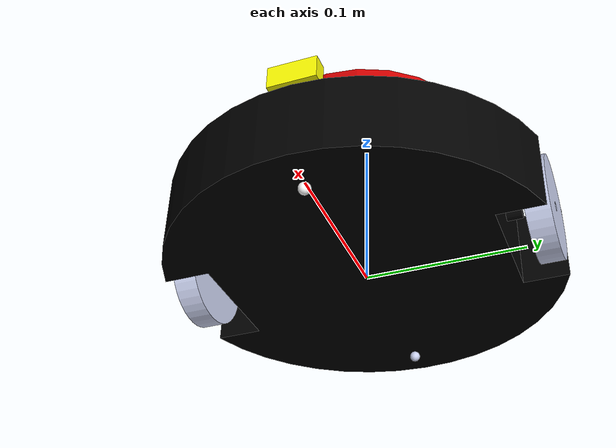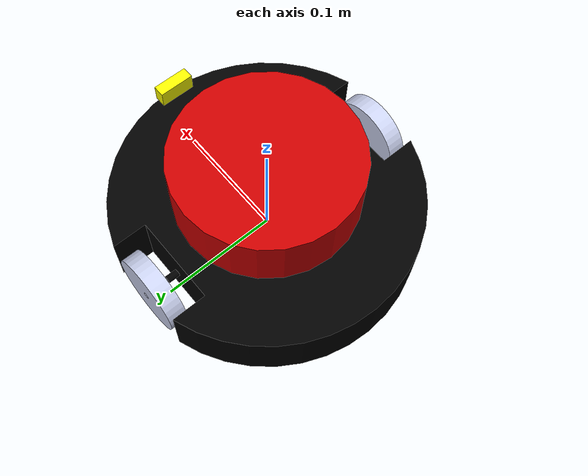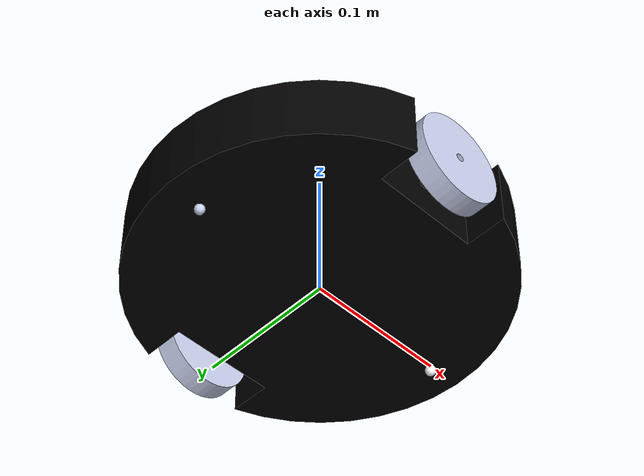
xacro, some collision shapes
<?xml version="1.0"?>
<robot xmlns:xacro="http://www.ros.org/wiki/xacro"  name="hv_bot">

    <xacro:include filename="description_new.urdf" />

    <xacro:include filename="gz.xacro" />
    <xacro:include filename="materials.xacro" />

    <xacro:include filename="lidar.xacro" />
    <xacro:include filename="camera.xacro" />

</robot>

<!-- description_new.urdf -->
<robot name="hv_bot">

  <link name="base_footprint"/>

  <joint name="base_footprint_joint" type="fixed">
    <origin xyz="0 0 0" rpy="0 0 0" />
    <parent link="base_footprint" />
    <child link="base_link" />
  </joint>

<link name="base_link">
    <inertial>
      <origin xyz="0 0 0.0249999818482818" rpy="0 0 0" />
      <mass value="2.20669504552775" />
      <inertia
        ixx="0.00720851555103568" ixy="5.88950083162519E-19" ixz="2.75039385123007E-19"
        iyy="0.00993602524548524" iyz="-3.85986754710237E-20" izz="0.0162253162137275" />
    </inertial>

    <visual>
      <origin xyz="0 0 0" rpy="0 0 0" />
      <geometry>
        <mesh filename="file://$(find description_new)/meshes/base_link.STL" scale="1 1 1"/>
      </geometry>
      <material name="">
        <color rgba="0.0 0.0 0.0 1.0"/>
      </material>
    </visual>

    <collision>
      <origin xyz="0 0 0" rpy="0 0 0" />
      <geometry>
        <mesh filename="file://$(find description_new)/meshes/base_link.STL" scale="1 1 1"/>
      </geometry>
    </collision>
  </link>

  <link name="link_lw">
    <inertial>
      <origin xyz="0 -0.0075 -1.1102E-16" rpy="0 0 0" />
      <mass value="0.04935" />
      <inertia
        ixx="1.4068E-05" ixy="-1.6538E-24" ixz="-3.5658E-38"
        iyy="2.6285E-05" iyz="1.5953E-21" izz="1.4068E-05" />
    </inertial>
    <visual>
      <origin xyz="0 0 0" rpy="0 0 0" />
      <geometry>
        <mesh filename="file://$(find description_new)/meshes/link_lw.STL" scale="1 1 1"/>
      </geometry>
      <material name="">
        <color rgba="0.79216 0.81961 0.93333 1" />
      </material>
    </visual>
    <collision>
      <origin xyz="0 0 0" rpy="1.5708 0 0" />
      <geometry>
        <cylinder radius="0.0325" length="0.025"/>
      </geometry>
    </collision>
  </link>

  <joint name="joint_lw" type="continuous">
    <origin xyz="0 0.105 0.025" rpy="0 0 3.1416" /> <parent link="base_link" />
    <child link="link_lw" />
    <axis xyz="0 -1 0" />
  </joint>

  <link name="link_rw">
    <inertial>
      <origin xyz="-2.2204E-16 0.0075 -1.1102E-16" rpy="0 0 0" />
      <mass value="0.04935" />
      <inertia
        ixx="1.4068E-05" ixy="1.6538E-24" ixz="1.0924E-41"
        iyy="2.6285E-05" iyz="2.3647E-38" izz="1.4068E-05" />
    </inertial>
    <visual>
      <origin xyz="0 0 0" rpy="0 0 0" />
      <geometry>
        <mesh filename="file://$(find description_new)/meshes/link_rw.STL" scale="1 1 1"/>
      </geometry>
      <material name="">
        <color rgba="0.79216 0.81961 0.93333 1" />
      </material>
    </visual>
    <collision>
      <origin xyz="0 0 0" rpy="1.5708 0 0" />
      <geometry>
        <cylinder radius="0.0325" length="0.025"/>
      </geometry>
    </collision>
  </link>

  <joint name="joint_rw" type="continuous">
    <origin xyz="0 -0.105 0.025" rpy="0 0 3.1416" /> <parent link="base_link" />
    <child link="link_rw" />
    <axis xyz="0 -1 0" />
  </joint>

  <link name="link_ca">
    <inertial>
      <origin xyz="0 0 0" rpy="0 0 0" />
      <mass value="0.1" />
      <inertia ixx="0.0001" ixy="0" ixz="0" iyy="0.0001" iyz="0" izz="0.0001" />
    </inertial>
    <visual>
      <origin xyz="0 0 0" rpy="0 0 0" />
      <geometry>
        <mesh filename="file://$(find description_new)/meshes/link_ca.STL" scale="1 1 1"/>
      </geometry>
      <material name="">
        <color rgba="0.79216 0.81961 0.93333 1" />
      </material>
    </visual>
    <collision>
      <origin xyz="0 0 0" rpy="0 0 0" />
      <geometry>
        <sphere radius="0.0035"/>
      </geometry>
    </collision>
  </link>

  <joint name="joint_ca" type="continuous">
    <origin xyz="-0.1 0 -0.0037667" rpy="0 0 3.1416" />
    <parent link="base_link" />
    <child link="link_ca" />
    <axis xyz="0 1 0" />
  </joint>

  <link name="link_ca2">
    <inertial>
      <origin xyz="0 0 0" rpy="0 0 0" />
      <mass value="0.1" />
      <inertia ixx="0.0001" ixy="0" ixz="0" iyy="0.0001" iyz="0" izz="0.0001" />
    </inertial>
    <visual>
      <origin xyz="0 0 0" rpy="0 0 0" />
      <geometry>
        <mesh filename="file://$(find description_new)/meshes/link_ca2.STL" scale="1 1 1"/>
      </geometry>
      <material name="">
        <color rgba="1 1 1 1" />
      </material>
    </visual>
    <collision>
      <origin xyz="0 0 0" rpy="0 0 0" />
      <geometry>
        <sphere radius="0.0035"/>
      </geometry>
    </collision>
  </link>

  <joint name="joint_ca2" type="continuous">
    <origin xyz="0.1 0 -0.0037667" rpy="0 0 3.1416" />
    <parent link="base_link" />
    <child link="link_ca2" />
    <axis xyz="0 1 0" />
  </joint>

  <gazebo reference="link_ca">
    <collision>
      <surface>
        <friction>
          <ode>
            <mu>0.0</mu>
            <mu2>0.0</mu2>
            <slip1>1.0</slip1>
            <slip2>1.0</slip2>
          </ode>
        </friction>
      </surface>
    </collision>
  </gazebo>

  <gazebo reference="link_ca2">
    <collision>
      <surface>
        <friction>
          <ode>
            <mu>0.0</mu>
            <mu2>0.0</mu2>
            <slip1>1.0</slip1>
            <slip2>1.0</slip2>
          </ode>
        </friction>
      </surface>
    </collision>
  </gazebo>

  <joint name="imu_joint" type="fixed">
    <origin xyz="0 0 0" rpy="0 0 0" />
    <parent link="base_link"/>
    <child link="imu_link" />
  </joint>

  <link name="imu_link">
    <collision>
      <origin xyz="0 0 0" rpy="0 0 0"/>
      <geometry>
        <sphere radius="0.001"/>
      </geometry>
    </collision>
  </link>

<gazebo reference="link_lw">
    <collision>
      <surface>
        <friction>
          <ode><mu>1.0</mu><mu2>1.0</mu2></ode>
        </friction>
      </surface>
    </collision>
  </gazebo>

  <gazebo reference="link_rw">
    <collision>
      <surface>
        <friction>
          <ode><mu>1.0</mu><mu2>1.0</mu2></ode>
        </friction>
      </surface>
    </collision>
  </gazebo>

</robot>

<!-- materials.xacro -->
<robot xmlns:xacro="http://www.ros.org/wiki/xacro" name="hv_bot">

    <material name="black">
        <color rgba="0.0 0.0 0.0 1.0"/>
    </material>

    <material name="blue">
        <color rgba="0.0 0.0 0.8 1.0"/>
    </material>

    <material name="green">
        <color rgba="0.0 0.8 0.0 1.0"/>
    </material>

    <material name="yellow">
        <color rgba="1.0 1.0 0.0 1.0"/>
    </material>

    <material name="dark_grey">
        <color rgba="0.2 0.2 0.2 1.0"/>
    </material>

    <material name="orange">
        <color rgba="${255/255} ${108/255} ${10/255} 1.0"/>
    </material>

    <material name="brown">
        <color rgba="${139/255} ${69/255} ${19/255} 1.0"/>
    </material>

    <material name="red">
        <color rgba="0.8 0.0 0.0 1.0"/>
    </material>

    <material name="turquoise">
        <color rgba="${64/255} ${224/255} ${208/255} 1.0"/>
    </material>

    <material name="purple">
        <color rgba="${128/255} ${0/255} ${128/255} 1.0"/>
    </material>

    <material name="white">
        <color rgba="1.0 1.0 1.0 1.0"/>
    </material>

    <material name="aluminium">
        <color rgba="0.5 0.5 0.5 1"/>
    </material>

    <material name="plastic">
        <color rgba="0.1 0.1 0.1 1"/>
    </material>

</robot>

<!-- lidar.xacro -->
<robot xmlns:xacro="http://www.ros.org/wiki/xacro" name="hv_bot">

        <link name="two_d_lidar">
            <collision>
                <origin xyz="0 0 0" rpy="0 0 0" />
                <geometry>
                    <cylinder length="0.05" radius="0.075"/>
                </geometry>
            </collision>

            <visual>
                <origin xyz="0 0 0" rpy="0 0 0" />
                <geometry>
                    <cylinder length="0.05" radius="0.075"/>
                </geometry>
                    <material name="red">
                                    <color rgba="0.8 0.0 0.0 1.0"/>

                    </material>
            </visual>

            <inertial>
                <origin xyz="0 0 0" rpy="0 0 0" />
                <mass value="0.1"/>
                <inertia ixx="0.000170625" ixy="0.0" ixz="0.0" iyy="0.000170625" iyz="0.0" izz="0.00028125" />
            </inertial>
        </link>

        <joint name="two_d_lidar_joint" type="fixed">
            <parent link="base_link"/>
            <child link="two_d_lidar"/>
            <origin xyz="0.0 0 0.08" rpy="0 0 0" />
        </joint>

        <gazebo reference="two_d_lidar">
            <material name="red">
                <color rgba="0.8 0.0 0.0 1.0"/>
            </material>
        </gazebo>

</robot>

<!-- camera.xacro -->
<robot xmlns:xacro="http://www.ros.org/wiki/xacro"  name="hv_bot">
  <link name="camera">
    <collision>
      <origin xyz="0 0 0" rpy="0 0 0" />
      <geometry>
        <box size="0.01 0.03 0.015"/>
      </geometry>
    </collision>

    <visual>
      <origin xyz="0 0 0" rpy="0 0 0" />
      <geometry>
        <box size="0.01 0.03 0.015"/>
      </geometry>
      <material name="yellow">
        <color rgba="1.0 1.0 0.0 1.0"/>
      </material>
    </visual>

    <inertial>
      <origin xyz="0 0 0" rpy="0 0 0" />
      <mass value="0.01"/>
      <inertia ixx="0.00008175" ixy="0" ixz="0" iyy="0.00001083" iyz="0" izz="0.00007908" />
    </inertial>
  </link>

  <joint name="camera_joint" type="fixed">
    <origin xyz="0.12 0 0.06" rpy="0 0 0" />
    <parent link="base_link"/>
    <child link="camera"/>
  </joint>

  <link name="camera_optical"/>

  <joint name="camera_optical_joint" type="fixed">
    <origin xyz="0 0 0" rpy="0 0 0"/>
    <parent link="camera"/>
    <child link="camera_optical"/>
  </joint>

  <gazebo reference="camera">
    <material>Gazebo/Black</material>

    <sensor name="rgbd_camera" type="rgbd_camera">
      <update_rate>10.0</update_rate>
      <always_on>true</always_on>

      <topic>camera</topic>
      <gz_frame_id>camera_optical</gz_frame_id>

      <camera>
        <camera_info_topic>/camera/camera_info</camera_info_topic>
        <horizontal_fov>1.3962634</horizontal_fov>
        <image>
          <width>640</width>
          <height>480</height>
          <format>R8G8B8</format>
        </image>
        <clip>
          <near>0.05</near>
          <far>20.0</far>
        </clip>
        <optical_frame_id>camera_optical</optical_frame_id>
      </camera>
    </sensor>
  </gazebo>
</robot>
